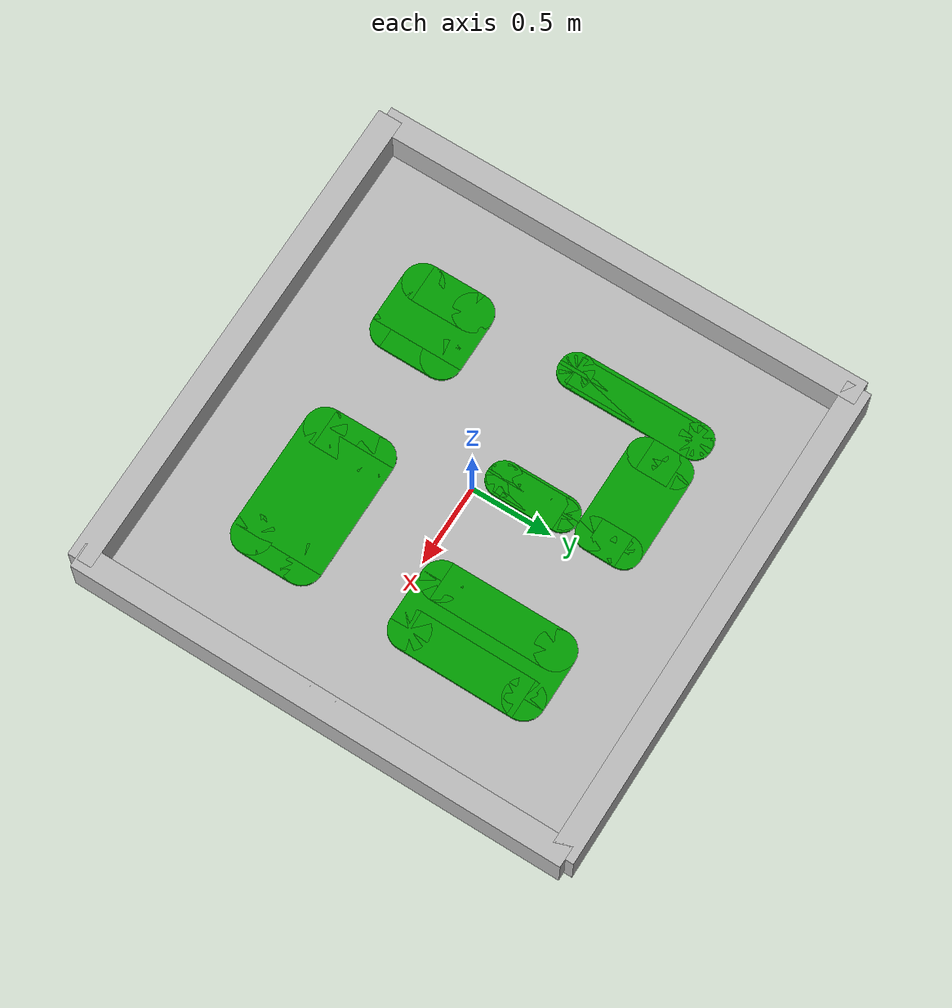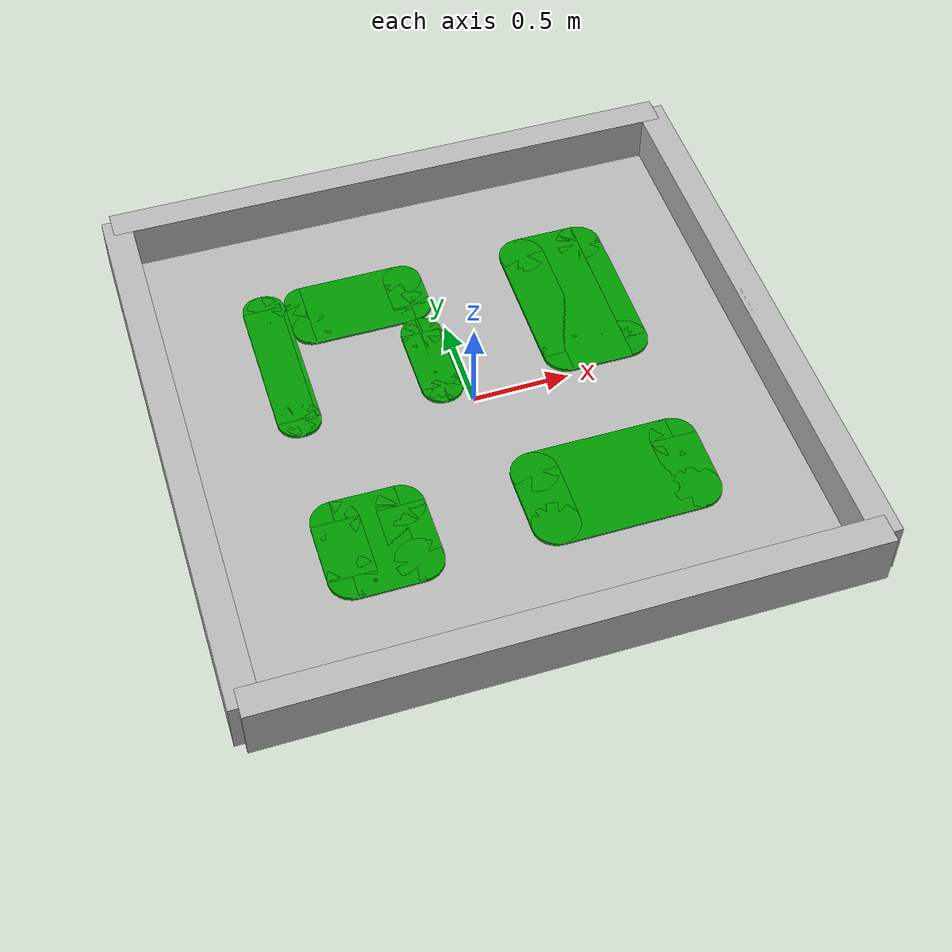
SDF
<?xml version="1.0" ?>

<sdf version="1.5">
	<world name="default">
		<plugin name="gazebo_ros_state" filename="libgazebo_ros_state.so">
			<ros>
				<namespace>/gazebo</namespace>

				<argument>link_states:=link_states_demo</argument>
			</ros>

			<update_rate>1.0</update_rate>
		</plugin>
		<!-- A global light source -->
		<include>
			<uri>model://sun</uri>
		</include>

		<!-- simulation table -->
		<include>
			<uri>model://simulation_table_with_obstacles</uri>
		</include>

		<include>
			<name>Apriltag36_11_00000</name>
			<pose>1.45 0.0 0.15 1.5708 0 1.5708</pose>
			<static>true</static>
			<uri>model://Apriltag36_11_00000</uri>
		</include>
	</world>

</sdf>

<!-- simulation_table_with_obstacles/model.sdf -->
<sdf version="1.5">
  <model name="simulation_table_with_obstacles">
    <static>true</static>
    <link name="floor">
      <collision name="collision">
        <geometry>
          <plane>
            <normal>0 0 1</normal>
            <size>3.0 3.0</size>
          </plane>
        </geometry>
        <surface>
          <friction>
            <ode>
              <mu>100</mu>
              <mu2>50</mu2>
            </ode>
          </friction>
        </surface>
      </collision>
      <visual name="visual">
        <cast_shadows>false</cast_shadows>
        <geometry>
          <plane>
            <normal>0 0 1</normal>
            <size>3.0 3.0</size>
          </plane>
        </geometry>
        <material>
          <script>
            <uri>model://simulation_table_with_obstacles/materials/scripts/</uri>
            <uri>model://simulation_table_with_obstacles/materials/textures/</uri>
            <name>SimulationTableWithObstacle/Background</name>
          </script>
        </material>
      </visual>
    </link>

    <!-- Ortak: visual z=0.01 (0.02 kalınlık), collision z=0.50 (1.00 yükseklik) -->
    <!-- Lidar için laser_retro=0.8, temas kuvvetini kapat: collide_without_contact=true -->

    <!-- =================== SOL-ÜST L: SOL KOL (r=0.10) =================== -->
    <!-- center=(-0.87150, 0.49789), size=(0.22180 x 0.96540) -->
    <!-- w_mid=0.02180, h_mid=0.76540, x_edge=0.01090, y_edge=0.38270 -->
    <link name="forbidden_tl_left">
      <laser_retro>0.8</laser_retro>
      <pose>-0.87150 0.49789 0 0 0 0</pose>

      <collision name="tl_left_c_mid">
        <pose>0 0 0.50 0 0 0</pose>
        <geometry><box><size>0.02180 0.96540 1.00</size></box></geometry>
        <surface><contact><collide_without_contact>true</collide_without_contact></contact></surface>
      </collision>
      <collision name="tl_left_c_left">
        <pose>-0.01090 0 0.50 0 0 0</pose>
        <geometry><box><size>0.20 0.76540 1.00</size></box></geometry>
        <surface><contact><collide_without_contact>true</collide_without_contact></contact></surface>
      </collision>
      <collision name="tl_left_c_right">
        <pose>0.01090 0 0.50 0 0 0</pose>
        <geometry><box><size>0.20 0.76540 1.00</size></box></geometry>
        <surface><contact><collide_without_contact>true</collide_without_contact></contact></surface>
      </collision>
      <collision name="tl_left_c_ne">
        <pose>0.01090 0.38270 0.50 0 0 0</pose>
        <geometry><cylinder><radius>0.10</radius><length>1.00</length></cylinder></geometry>
        <surface><contact><collide_without_contact>true</collide_without_contact></contact></surface>
      </collision>
      <collision name="tl_left_c_nw">
        <pose>-0.01090 0.38270 0.50 0 0 0</pose>
        <geometry><cylinder><radius>0.10</radius><length>1.00</length></cylinder></geometry>
        <surface><contact><collide_without_contact>true</collide_without_contact></contact></surface>
      </collision>
      <collision name="tl_left_c_se">
        <pose>0.01090 -0.38270 0.50 0 0 0</pose>
        <geometry><cylinder><radius>0.10</radius><length>1.00</length></cylinder></geometry>
        <surface><contact><collide_without_contact>true</collide_without_contact></contact></surface>
      </collision>
      <collision name="tl_left_c_sw">
        <pose>-0.01090 -0.38270 0.50 0 0 0</pose>
        <geometry><cylinder><radius>0.10</radius><length>1.00</length></cylinder></geometry>
        <surface><contact><collide_without_contact>true</collide_without_contact></contact></surface>
      </collision>

      <visual name="tl_left_v_mid">
        <pose>0 0 0.01 0 0 0</pose>
        <geometry><box><size>0.02180 0.96540 0.02</size></box></geometry>
        <material><ambient>0 0.6 0 1</ambient><diffuse>0 0.6 0 1</diffuse></material>
      </visual>
      <visual name="tl_left_v_left">
        <pose>-0.01090 0 0.01 0 0 0</pose>
        <geometry><box><size>0.20 0.76540 0.02</size></box></geometry>
        <material><ambient>0 0.6 0 1</ambient><diffuse>0 0.6 0 1</diffuse></material>
      </visual>
      <visual name="tl_left_v_right">
        <pose>0.01090 0 0.01 0 0 0</pose>
        <geometry><box><size>0.20 0.76540 0.02</size></box></geometry>
        <material><ambient>0 0.6 0 1</ambient><diffuse>0 0.6 0 1</diffuse></material>
      </visual>
      <visual name="tl_left_v_ne">
        <pose>0.01090 0.38270 0.01 0 0 0</pose>
        <geometry><cylinder><radius>0.10</radius><length>0.02</length></cylinder></geometry>
        <material><ambient>0 0.6 0 1</ambient><diffuse>0 0.6 0 1</diffuse></material>
      </visual>
      <visual name="tl_left_v_nw">
        <pose>-0.01090 0.38270 0.01 0 0 0</pose>
        <geometry><cylinder><radius>0.10</radius><length>0.02</length></cylinder></geometry>
        <material><ambient>0 0.6 0 1</ambient><diffuse>0 0.6 0 1</diffuse></material>
      </visual>
      <visual name="tl_left_v_se">
        <pose>0.01090 -0.38270 0.01 0 0 0</pose>
        <geometry><cylinder><radius>0.10</radius><length>0.02</length></cylinder></geometry>
        <material><ambient>0 0.6 0 1</ambient><diffuse>0 0.6 0 1</diffuse></material>
      </visual>
      <visual name="tl_left_v_sw">
        <pose>-0.01090 -0.38270 0.01 0 0 0</pose>
        <geometry><cylinder><radius>0.10</radius><length>0.02</length></cylinder></geometry>
        <material><ambient>0 0.6 0 1</ambient><diffuse>0 0.6 0 1</diffuse></material>
      </visual>
    </link>

    <!-- =================== SOL-ÜST L: ÜST KOL (r=0.10) =================== -->
    <!-- center=(-0.39266, 0.78405), size=(0.73588 x 0.39309) -->
    <!-- w_mid=0.53588, h_mid=0.19309, x_edge=0.26794, y_edge=0.09654 -->
    <link name="forbidden_tl_top">
      <laser_retro>0.8</laser_retro>
      <pose>-0.39266 0.78405 0 0 0 0</pose>

      <collision name="tl_top_c_mid">
        <pose>0 0 0.50 0 0 0</pose>
        <geometry><box><size>0.53588 0.39309 1.00</size></box></geometry>
        <surface><contact><collide_without_contact>true</collide_without_contact></contact></surface>
      </collision>
      <collision name="tl_top_c_left">
        <pose>-0.26794 0 0.50 0 0 0</pose>
        <geometry><box><size>0.20 0.19309 1.00</size></box></geometry>
        <surface><contact><collide_without_contact>true</collide_without_contact></contact></surface>
      </collision>
      <collision name="tl_top_c_right">
        <pose>0.26794 0 0.50 0 0 0</pose>
        <geometry><box><size>0.20 0.19309 1.00</size></box></geometry>
        <surface><contact><collide_without_contact>true</collide_without_contact></contact></surface>
      </collision>
      <collision name="tl_top_c_ne">
        <pose>0.26794 0.09654 0.50 0 0 0</pose>
        <geometry><cylinder><radius>0.10</radius><length>1.00</length></cylinder></geometry>
        <surface><contact><collide_without_contact>true</collide_without_contact></contact></surface>
      </collision>
      <collision name="tl_top_c_nw">
        <pose>-0.26794 0.09654 0.50 0 0 0</pose>
        <geometry><cylinder><radius>0.10</radius><length>1.00</length></cylinder></geometry>
        <surface><contact><collide_without_contact>true</collide_without_contact></contact></surface>
      </collision>
      <collision name="tl_top_c_se">
        <pose>0.26794 -0.09654 0.50 0 0 0</pose>
        <geometry><cylinder><radius>0.10</radius><length>1.00</length></cylinder></geometry>
        <surface><contact><collide_without_contact>true</collide_without_contact></contact></surface>
      </collision>
      <collision name="tl_top_c_sw">
        <pose>-0.26794 -0.09654 0.50 0 0 0</pose>
        <geometry><cylinder><radius>0.10</radius><length>1.00</length></cylinder></geometry>
        <surface><contact><collide_without_contact>true</collide_without_contact></contact></surface>
      </collision>

      <visual name="tl_top_v_mid">
        <pose>0 0 0.01 0 0 0</pose>
        <geometry><box><size>0.53588 0.39309 0.02</size></box></geometry>
        <material><ambient>0 0.6 0 1</ambient><diffuse>0 0.6 0 1</diffuse></material>
      </visual>
      <visual name="tl_top_v_left">
        <pose>-0.26794 0 0.01 0 0 0</pose>
        <geometry><box><size>0.20 0.19309 0.02</size></box></geometry>
        <material><ambient>0 0.6 0 1</ambient><diffuse>0 0.6 0 1</diffuse></material>
      </visual>
      <visual name="tl_top_v_right">
        <pose>0.26794 0 0.01 0 0 0</pose>
        <geometry><box><size>0.20 0.19309 0.02</size></box></geometry>
        <material><ambient>0 0.6 0 1</ambient><diffuse>0 0.6 0 1</diffuse></material>
      </visual>
      <visual name="tl_top_v_ne">
        <pose>0.26794 0.09654 0.01 0 0 0</pose>
        <geometry><cylinder><radius>0.10</radius><length>0.02</length></cylinder></geometry>
        <material><ambient>0 0.6 0 1</ambient><diffuse>0 0.6 0 1</diffuse></material>
      </visual>
      <visual name="tl_top_v_nw">
        <pose>-0.26794 0.09654 0.01 0 0 0</pose>
        <geometry><cylinder><radius>0.10</radius><length>0.02</length></cylinder></geometry>
        <material><ambient>0 0.6 0 1</ambient><diffuse>0 0.6 0 1</diffuse></material>
      </visual>
      <visual name="tl_top_v_se">
        <pose>0.26794 -0.09654 0.01 0 0 0</pose>
        <geometry><cylinder><radius>0.10</radius><length>0.02</length></cylinder></geometry>
        <material><ambient>0 0.6 0 1</ambient><diffuse>0 0.6 0 1</diffuse></material>
      </visual>
      <visual name="tl_top_v_sw">
        <pose>-0.26794 -0.09654 0.01 0 0 0</pose>
        <geometry><cylinder><radius>0.10</radius><length>0.02</length></cylinder></geometry>
        <material><ambient>0 0.6 0 1</ambient><diffuse>0 0.6 0 1</diffuse></material>
      </visual>
    </link>

    <!-- =================== SOL-ÜST L: SAĞ KOL (r=0.10) =================== -->
    <!-- center=(-0.13176, 0.30135), size=(0.21408 x 0.57231) -->
    <!-- w_mid=0.01408, h_mid=0.37231, x_edge=0.00704, y_edge=0.18615 -->
    <link name="forbidden_tl_right">
      <laser_retro>0.8</laser_retro>
      <pose>-0.13176 0.30135 0 0 0 0</pose>

      <collision name="tl_right_c_mid">
        <pose>0 0 0.50 0 0 0</pose>
        <geometry><box><size>0.01408 0.57231 1.00</size></box></geometry>
        <surface><contact><collide_without_contact>true</collide_without_contact></contact></surface>
      </collision>
      <collision name="tl_right_c_left">
        <pose>-0.00704 0 0.50 0 0 0</pose>
        <geometry><box><size>0.20 0.37231 1.00</size></box></geometry>
        <surface><contact><collide_without_contact>true</collide_without_contact></contact></surface>
      </collision>
      <collision name="tl_right_c_right">
        <pose>0.00704 0 0.50 0 0 0</pose>
        <geometry><box><size>0.20 0.37231 1.00</size></box></geometry>
        <surface><contact><collide_without_contact>true</collide_without_contact></contact></surface>
      </collision>
      <collision name="tl_right_c_ne">
        <pose>0.00704 0.18615 0.50 0 0 0</pose>
        <geometry><cylinder><radius>0.10</radius><length>1.00</length></cylinder></geometry>
        <surface><contact><collide_without_contact>true</collide_without_contact></contact></surface>
      </collision>
      <collision name="tl_right_c_nw">
        <pose>-0.00704 0.18615 0.50 0 0 0</pose>
        <geometry><cylinder><radius>0.10</radius><length>1.00</length></cylinder></geometry>
        <surface><contact><collide_without_contact>true</collide_without_contact></contact></surface>
      </collision>
      <collision name="tl_right_c_se">
        <pose>0.00704 -0.18615 0.50 0 0 0</pose>
        <geometry><cylinder><radius>0.10</radius><length>1.00</length></cylinder></geometry>
        <surface><contact><collide_without_contact>true</collide_without_contact></contact></surface>
      </collision>
      <collision name="tl_right_c_sw">
        <pose>-0.00704 -0.18615 0.50 0 0 0</pose>
        <geometry><cylinder><radius>0.10</radius><length>1.00</length></cylinder></geometry>
        <surface><contact><collide_without_contact>true</collide_without_contact></contact></surface>
      </collision>

      <visual name="tl_right_v_mid">
        <pose>0 0 0.01 0 0 0</pose>
        <geometry><box><size>0.01408 0.57231 0.02</size></box></geometry>
        <material><ambient>0 0.6 0 1</ambient><diffuse>0 0.6 0 1</diffuse></material>
      </visual>
      <visual name="tl_right_v_left">
        <pose>-0.00704 0 0.01 0 0 0</pose>
        <geometry><box><size>0.20 0.37231 0.02</size></box></geometry>
        <material><ambient>0 0.6 0 1</ambient><diffuse>0 0.6 0 1</diffuse></material>
      </visual>
      <visual name="tl_right_v_right">
        <pose>0.00704 0 0.01 0 0 0</pose>
        <geometry><box><size>0.20 0.37231 0.02</size></box></geometry>
        <material><ambient>0 0.6 0 1</ambient><diffuse>0 0.6 0 1</diffuse></material>
      </visual>
      <visual name="tl_right_v_ne">
        <pose>0.00704 0.18615 0.01 0 0 0</pose>
        <geometry><cylinder><radius>0.10</radius><length>0.02</length></cylinder></geometry>
        <material><ambient>0 0.6 0 1</ambient><diffuse>0 0.6 0 1</diffuse></material>
      </visual>
      <visual name="tl_right_v_nw">
        <pose>-0.00704 0.18615 0.01 0 0 0</pose>
        <geometry><cylinder><radius>0.10</radius><length>0.02</length></cylinder></geometry>
        <material><ambient>0 0.6 0 1</ambient><diffuse>0 0.6 0 1</diffuse></material>
      </visual>
      <visual name="tl_right_v_se">
        <pose>0.00704 -0.18615 0.01 0 0 0</pose>
        <geometry><cylinder><radius>0.10</radius><length>0.02</length></cylinder></geometry>
        <material><ambient>0 0.6 0 1</ambient><diffuse>0 0.6 0 1</diffuse></material>
      </visual>
      <visual name="tl_right_v_sw">
        <pose>-0.00704 -0.18615 0.01 0 0 0</pose>
        <geometry><cylinder><radius>0.10</radius><length>0.02</length></cylinder></geometry>
        <material><ambient>0 0.6 0 1</ambient><diffuse>0 0.6 0 1</diffuse></material>
      </visual>
    </link>

    <!-- =================== ÜST-SAĞ DİKDÖRTGEN (r=0.12) =================== -->
    <!-- W=0.55875, H=0.95848, r=0.12 -> w_mid=0.31875, h_mid=0.71848, x_edge=0.159375, y_edge=0.35924 -->
    <link name="forbidden_tr">
      <laser_retro>0.8</laser_retro>
      <pose>0.696965 0.501280 0 0 0 0</pose>

      <collision name="tr_c_mid">
        <pose>0 0 0.50 0 0 0</pose>
        <geometry><box><size>0.31875 0.95848 1.00</size></box></geometry>
        <surface><contact><collide_without_contact>true</collide_without_contact></contact></surface>
      </collision>
      <collision name="tr_c_left">
        <pose>-0.159375 0 0.50 0 0 0</pose>
        <geometry><box><size>0.24 0.71848 1.00</size></box></geometry>
        <surface><contact><collide_without_contact>true</collide_without_contact></contact></surface>
      </collision>
      <collision name="tr_c_right">
        <pose>0.159375 0 0.50 0 0 0</pose>
        <geometry><box><size>0.24 0.71848 1.00</size></box></geometry>
        <surface><contact><collide_without_contact>true</collide_without_contact></contact></surface>
      </collision>
      <collision name="tr_c_ne">
        <pose>0.159375 0.35924 0.50 0 0 0</pose>
        <geometry><cylinder><radius>0.12</radius><length>1.00</length></cylinder></geometry>
        <surface><contact><collide_without_contact>true</collide_without_contact></contact></surface>
      </collision>
      <collision name="tr_c_nw">
        <pose>-0.159375 0.35924 0.50 0 0 0</pose>
        <geometry><cylinder><radius>0.12</radius><length>1.00</length></cylinder></geometry>
        <surface><contact><collide_without_contact>true</collide_without_contact></contact></surface>
      </collision>
      <collision name="tr_c_se">
        <pose>0.159375 -0.35924 0.50 0 0 0</pose>
        <geometry><cylinder><radius>0.12</radius><length>1.00</length></cylinder></geometry>
        <surface><contact><collide_without_contact>true</collide_without_contact></contact></surface>
      </collision>
      <collision name="tr_c_sw">
        <pose>-0.159375 -0.35924 0.50 0 0 0</pose>
        <geometry><cylinder><radius>0.12</radius><length>1.00</length></cylinder></geometry>
        <surface><contact><collide_without_contact>true</collide_without_contact></contact></surface>
      </collision>

      <visual name="tr_v_mid">
        <pose>0 0 0.01 0 0 0</pose>
        <geometry><box><size>0.31875 0.95848 0.02</size></box></geometry>
        <material><ambient>0 0.6 0 1</ambient><diffuse>0 0.6 0 1</diffuse></material>
      </visual>
      <visual name="tr_v_left">
        <pose>-0.159375 0 0.01 0 0 0</pose>
        <geometry><box><size>0.24 0.71848 0.02</size></box></geometry>
        <material><ambient>0 0.6 0 1</ambient><diffuse>0 0.6 0 1</diffuse></material>
      </visual>
      <visual name="tr_v_right">
        <pose>0.159375 0 0.01 0 0 0</pose>
        <geometry><box><size>0.24 0.71848 0.02</size></box></geometry>
        <material><ambient>0 0.6 0 1</ambient><diffuse>0 0.6 0 1</diffuse></material>
      </visual>
      <visual name="tr_v_ne">
        <pose>0.159375 0.35924 0.01 0 0 0</pose>
        <geometry><cylinder><radius>0.12</radius><length>0.02</length></cylinder></geometry>
        <material><ambient>0 0.6 0 1</ambient><diffuse>0 0.6 0 1</diffuse></material>
      </visual>
      <visual name="tr_v_nw">
        <pose>-0.159375 0.35924 0.01 0 0 0</pose>
        <geometry><cylinder><radius>0.12</radius><length>0.02</length></cylinder></geometry>
        <material><ambient>0 0.6 0 1</ambient><diffuse>0 0.6 0 1</diffuse></material>
      </visual>
      <visual name="tr_v_se">
        <pose>0.159375 -0.35924 0.01 0 0 0</pose>
        <geometry><cylinder><radius>0.12</radius><length>0.02</length></cylinder></geometry>
        <material><ambient>0 0.6 0 1</ambient><diffuse>0 0.6 0 1</diffuse></material>
      </visual>
      <visual name="tr_v_sw">
        <pose>-0.159375 -0.35924 0.01 0 0 0</pose>
        <geometry><cylinder><radius>0.12</radius><length>0.02</length></cylinder></geometry>
        <material><ambient>0 0.6 0 1</ambient><diffuse>0 0.6 0 1</diffuse></material>
      </visual>
    </link>

    <!-- =================== ALT-SOL DİKDÖRTGEN (r=0.12) =================== -->
    <!-- W=0.56372, H=0.56689, r=0.12 -> w_mid=0.32372, h_mid=0.32689, x_edge=0.16186, y_edge=0.163445 -->
    <link name="forbidden_bl">
      <laser_retro>0.8</laser_retro>
      <pose>-0.699490 -0.703075 0 0 0 0</pose>

      <collision name="bl_c_mid">
        <pose>0 0 0.50 0 0 0</pose>
        <geometry><box><size>0.32372 0.56689 1.00</size></box></geometry>
        <surface><contact><collide_without_contact>true</collide_without_contact></contact></surface>
      </collision>
      <collision name="bl_c_left">
        <pose>-0.16186 0 0.50 0 0 0</pose>
        <geometry><box><size>0.24 0.32689 1.00</size></box></geometry>
        <surface><contact><collide_without_contact>true</collide_without_contact></contact></surface>
      </collision>
      <collision name="bl_c_right">
        <pose>0.16186 0 0.50 0 0 0</pose>
        <geometry><box><size>0.24 0.32689 1.00</size></box></geometry>
        <surface><contact><collide_without_contact>true</collide_without_contact></contact></surface>
      </collision>
      <collision name="bl_c_ne">
        <pose>0.16186 0.163445 0.50 0 0 0</pose>
        <geometry><cylinder><radius>0.12</radius><length>1.00</length></cylinder></geometry>
        <surface><contact><collide_without_contact>true</collide_without_contact></contact></surface>
      </collision>
      <collision name="bl_c_nw">
        <pose>-0.16186 0.163445 0.50 0 0 0</pose>
        <geometry><cylinder><radius>0.12</radius><length>1.00</length></cylinder></geometry>
        <surface><contact><collide_without_contact>true</collide_without_contact></contact></surface>
      </collision>
      <collision name="bl_c_se">
        <pose>0.16186 -0.163445 0.50 0 0 0</pose>
        <geometry><cylinder><radius>0.12</radius><length>1.00</length></cylinder></geometry>
        <surface><contact><collide_without_contact>true</collide_without_contact></contact></surface>
      </collision>
      <collision name="bl_c_sw">
        <pose>-0.16186 -0.163445 0.50 0 0 0</pose>
        <geometry><cylinder><radius>0.12</radius><length>1.00</length></cylinder></geometry>
        <surface><contact><collide_without_contact>true</collide_without_contact></contact></surface>
      </collision>

      <visual name="bl_v_mid">
        <pose>0 0 0.01 0 0 0</pose>
        <geometry><box><size>0.32372 0.56689 0.02</size></box></geometry>
        <material><ambient>0 0.6 0 1</ambient><diffuse>0 0.6 0 1</diffuse></material>
      </visual>
      <visual name="bl_v_left">
        <pose>-0.16186 0 0.01 0 0 0</pose>
        <geometry><box><size>0.24 0.32689 0.02</size></box></geometry>
        <material><ambient>0 0.6 0 1</ambient><diffuse>0 0.6 0 1</diffuse></material>
      </visual>
      <visual name="bl_v_right">
        <pose>0.16186 0 0.01 0 0 0</pose>
        <geometry><box><size>0.24 0.32689 0.02</size></box></geometry>
        <material><ambient>0 0.6 0 1</ambient><diffuse>0 0.6 0 1</diffuse></material>
      </visual>
      <visual name="bl_v_ne">
        <pose>0.16186 0.163445 0.01 0 0 0</pose>
        <geometry><cylinder><radius>0.12</radius><length>0.02</length></cylinder></geometry>
        <material><ambient>0 0.6 0 1</ambient><diffuse>0 0.6 0 1</diffuse></material>
      </visual>
      <visual name="bl_v_nw">
        <pose>-0.16186 0.163445 0.01 0 0 0</pose>
        <geometry><cylinder><radius>0.12</radius><length>0.02</length></cylinder></geometry>
        <material><ambient>0 0.6 0 1</ambient><diffuse>0 0.6 0 1</diffuse></material>
      </visual>
      <visual name="bl_v_se">
        <pose>0.16186 -0.163445 0.01 0 0 0</pose>
        <geometry><cylinder><radius>0.12</radius><length>0.02</length></cylinder></geometry>
        <material><ambient>0 0.6 0 1</ambient><diffuse>0 0.6 0 1</diffuse></material>
      </visual>
      <visual name="bl_v_sw">
        <pose>-0.16186 -0.163445 0.01 0 0 0</pose>
        <geometry><cylinder><radius>0.12</radius><length>0.02</length></cylinder></geometry>
        <material><ambient>0 0.6 0 1</ambient><diffuse>0 0.6 0 1</diffuse></material>
      </visual>
    </link>

    <!-- =================== ALT-SAĞ DİKDÖRTGEN (r=0.12) =================== -->
    <!-- W=0.95848, H=0.55875, r=0.12 -> w_mid=0.71848, h_mid=0.31875, x_edge=0.35924, y_edge=0.159375 -->
    <link name="forbidden_br">
      <laser_retro>0.8</laser_retro>
      <pose>0.495530 -0.701895 0 0 0 0</pose>

      <collision name="br_c_mid">
        <pose>0 0 0.50 0 0 0</pose>
        <geometry><box><size>0.71848 0.55875 1.00</size></box></geometry>
        <surface><contact><collide_without_contact>true</collide_without_contact></contact></surface>
      </collision>
      <collision name="br_c_left">
        <pose>-0.35924 0 0.50 0 0 0</pose>
        <geometry><box><size>0.24 0.31875 1.00</size></box></geometry>
        <surface><contact><collide_without_contact>true</collide_without_contact></contact></surface>
      </collision>
      <collision name="br_c_right">
        <pose>0.35924 0 0.50 0 0 0</pose>
        <geometry><box><size>0.24 0.31875 1.00</size></box></geometry>
        <surface><contact><collide_without_contact>true</collide_without_contact></contact></surface>
      </collision>
      <collision name="br_c_ne">
        <pose>0.35924 0.159375 0.50 0 0 0</pose>
        <geometry><cylinder><radius>0.12</radius><length>1.00</length></cylinder></geometry>
        <surface><contact><collide_without_contact>true</collide_without_contact></contact></surface>
      </collision>
      <collision name="br_c_nw">
        <pose>-0.35924 0.159375 0.50 0 0 0</pose>
        <geometry><cylinder><radius>0.12</radius><length>1.00</length></cylinder></geometry>
        <surface><contact><collide_without_contact>true</collide_without_contact></contact></surface>
      </collision>
      <collision name="br_c_se">
        <pose>0.35924 -0.159375 0.50 0 0 0</pose>
        <geometry><cylinder><radius>0.12</radius><length>1.00</length></cylinder></geometry>
        <surface><contact><collide_without_contact>true</collide_without_contact></contact></surface>
      </collision>
      <collision name="br_c_sw">
        <pose>-0.35924 -0.159375 0.50 0 0 0</pose>
        <geometry><cylinder><radius>0.12</radius><length>1.00</length></cylinder></geometry>
        <surface><contact><collide_without_contact>true</collide_without_contact></contact></surface>
      </collision>

      <visual name="br_v_mid">
        <pose>0 0 0.01 0 0 0</pose>
        <geometry><box><size>0.71848 0.55875 0.02</size></box></geometry>
        <material><ambient>0 0.6 0 1</ambient><diffuse>0 0.6 0 1</diffuse></material>
      </visual>
      <visual name="br_v_left">
        <pose>-0.35924 0 0.01 0 0 0</pose>
        <geometry><box><size>0.24 0.31875 0.02</size></box></geometry>
        <material><ambient>0 0.6 0 1</ambient><diffuse>0 0.6 0 1</diffuse></material>
      </visual>
      <visual name="br_v_right">
        <pose>0.35924 0 0.01 0 0 0</pose>
        <geometry><box><size>0.24 0.31875 0.02</size></box></geometry>
        <material><ambient>0 0.6 0 1</ambient><diffuse>0 0.6 0 1</diffuse></material>
      </visual>
      <visual name="br_v_ne">
        <pose>0.35924 0.159375 0.01 0 0 0</pose>
        <geometry><cylinder><radius>0.12</radius><length>0.02</length></cylinder></geometry>
        <material><ambient>0 0.6 0 1</ambient><diffuse>0 0.6 0 1</diffuse></material>
      </visual>
      <visual name="br_v_nw">
        <pose>-0.35924 0.159375 0.01 0 0 0</pose>
        <geometry><cylinder><radius>0.12</radius><length>0.02</length></cylinder></geometry>
        <material><ambient>0 0.6 0 1</ambient><diffuse>0 0.6 0 1</diffuse></material>
      </visual>
      <visual name="br_v_se">
        <pose>0.35924 -0.159375 0.01 0 0 0</pose>
        <geometry><cylinder><radius>0.12</radius><length>0.02</length></cylinder></geometry>
        <material><ambient>0 0.6 0 1</ambient><diffuse>0 0.6 0 1</diffuse></material>
      </visual>
      <visual name="br_v_sw">
        <pose>-0.35924 -0.159375 0.01 0 0 0</pose>
        <geometry><cylinder><radius>0.12</radius><length>0.02</length></cylinder></geometry>
        <material><ambient>0 0.6 0 1</ambient><diffuse>0 0.6 0 1</diffuse></material>
      </visual>
    </link>

    <link name="side_1">
    <static>true</static>
      <pose relative_to="floor">0.0 1.5 0.1 1.57079632679 0 0</pose>
      <collision name="collision">
        <geometry>
          <box>
            <size>3.05 0.3 0.15</size>
          </box>
        </geometry>
        <surface>
          <friction>
            <ode>
              <mu>0</mu>
              <mu2>0</mu2>
            </ode>
          </friction>
          <bounce>
            <restitution_coefficient>0.0</restitution_coefficient>
            <threshold>0.0</threshold>
          </bounce>
        </surface>
      </collision>
      <visual name="visual">
        <cast_shadows>false</cast_shadows>
        <geometry>
          <box>
           <size>3.05 0.3 0.15</size>
          </box>
        </geometry>
      </visual>
    </link>
    <link name="side_2">
    <static>true</static>
      <pose relative_to="floor">0.0 -1.5 0.1 1.57079632679 0 0</pose>
      <collision name="collision">
        <geometry>
          <box>
            <size>3.05 0.3 0.15</size>
          </box>
        </geometry>
        <surface>
         <friction>
            <ode>
              <mu>0</mu>
              <mu2>0</mu2>
            </ode>
          </friction>
          <bounce>
            <restitution_coefficient>0.0</restitution_coefficient>
            <threshold>0.0</threshold>
          </bounce>
        </surface>
      </collision>
      <visual name="visual">
        <cast_shadows>false</cast_shadows>
        <geometry>
          <box>
            <size>3.05 0.3 0.15</size>
          </box>
        </geometry>
      </visual>
    </link>
    <link name="side_3">
    <static>true</static>
      <pose relative_to="floor">1.5 0.0 0.1 1.57079632679 0 1.57079632679</pose>
      <collision name="collision">
        <geometry>
          <box>
            <size>3.05 0.3 0.15</size>
          </box>
        </geometry>
        <surface>
          <friction>
            <ode>
              <mu>0</mu>
              <mu2>0</mu2>
            </ode>
          </friction>
          <bounce>
            <restitution_coefficient>0.0</restitution_coefficient>
            <threshold>0.0</threshold>
        </bounce>
        </surface>
      </collision>
      <visual name="visual">
        <cast_shadows>false</cast_shadows>
        <geometry>
          <box>
            <size>3.05 0.3 0.15</size>
          </box>
        </geometry>
      </visual>
    </link>
    <link name="side_4">
      <static>true</static>
      <pose relative_to="floor">-1.5 0.0 0.1 1.57079632679 0 1.57079632679</pose>
      <collision name="collision">
        <geometry>
          <box>
            <size>3.05 0.3 0.15</size>
          </box>
        </geometry>
        <surface>
          <friction>
            <ode>
              <mu>0</mu>
              <mu2>0</mu2>
            </ode>
          </friction>
          <bounce>
            <restitution_coefficient>0.0</restitution_coefficient>
            <threshold>0.0</threshold>
        </bounce>
        </surface>
      </collision>
      <visual name="visual">
        <cast_shadows>false</cast_shadows>
        <geometry>
          <box>
            <size>3.05 0.3 0.15</size>
          </box>
        </geometry>
      </visual>
    </link>
  </model>
</sdf>

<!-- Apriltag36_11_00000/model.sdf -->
<sdf version='1.6'>
  <model name='Apriltag36_11_00000'>
    <static>true</static>
    <link name="link">
      <visual name="visual">
        <geometry>
          <box>
            <size>0.2 0.2 0.001</size>
          </box>
        </geometry>
        <material>
          <script>
            <!-- point to your model's materials directories -->
            <uri>model://Apriltag36_11_00000/materials/scripts</uri>
            <uri>model://Apriltag36_11_00000/materials/textures</uri>
            <!-- material name defined in the .material file below -->
            <name>Apriltag36_11_00000</name>
          </script>
          <!-- keep colors white so the texture isn't tinted -->
          <ambient>1 1 1 1</ambient>
          <diffuse>1 1 1 1</diffuse>
          <specular>0 0 0 1</specular>
        </material>
        <cast_shadows>false</cast_shadows>
      </visual>

      <collision name="collision">
        <geometry>
          <box>
            <size>0.2 0.2 0.001</size>
          </box>
        </geometry>
      </collision>
    </link>
  </model>
</sdf>
